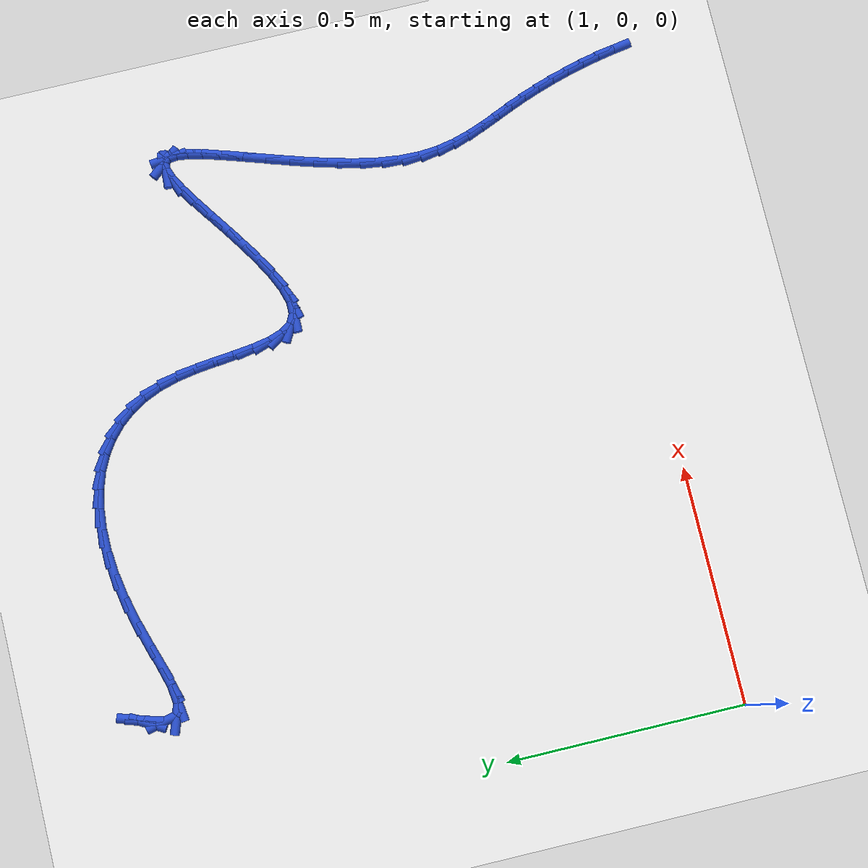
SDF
<sdf version="1.6">
 <world name="default">
  <model name="ground_plane">
   <static>1</static>
   <link name="link">
    <collision name="collision">
     <geometry><plane><normal>0 0 1</normal><size>100 100</size></plane></geometry>
     <surface><friction><ode><mu>100</mu><mu2>50</mu2></ode></friction></surface>
    </collision>
    <visual name="visual">
     <cast_shadows>0</cast_shadows>
     <geometry><plane><normal>0 0 1</normal><size>100 100</size></plane></geometry>
     <material>
      <script><uri>file://media/materials/scripts/gazebo.material</uri><name>Gazebo/WhiteGlow</name></script>
     </material>
    </visual>
   </link>
  </model>
  <model name="line">
   <link name="link_65">
    <pose>1.2470400216768356 1.1906525739523408 0.01 0 1.57 1.069491855337708</pose>
    <collision name="collision">
     <geometry><cylinder><radius>0.01</radius><length>0.08</length></cylinder></geometry>
    </collision>
    <visual name="visual">
     <material>
      <script><name>Gazebo/Blue</name><uri>file://media/materials/scripts/gazebo.material</uri></script>
     </material>
     <geometry><cylinder><radius>0.01</radius><length>0.08</length></cylinder></geometry>
    </visual>
   </link>
   <link name="link_66">
    <pose>1.2586101509191712 1.2117660453806218 0.01 0 1.57 1.2493437509703278</pose>
    <collision name="collision">
     <geometry><cylinder><radius>0.01</radius><length>0.08</length></cylinder></geometry>
    </collision>
    <visual name="visual">
     <material>
      <script><name>Gazebo/Blue</name><uri>file://media/materials/scripts/gazebo.material</uri></script>
     </material>
     <geometry><cylinder><radius>0.01</radius><length>0.08</length></cylinder></geometry>
    </visual>
   </link>
   <link name="link_67">
    <pose>1.2532583155586323 1.195694577707309 0.01 0 1.57 1.300045318937268</pose>
    <collision name="collision">
     <geometry><cylinder><radius>0.01</radius><length>0.08</length></cylinder></geometry>
    </collision>
    <visual name="visual">
     <material>
      <script><name>Gazebo/Blue</name><uri>file://media/materials/scripts/gazebo.material</uri></script>
     </material>
     <geometry><cylinder><radius>0.01</radius><length>0.08</length></cylinder></geometry>
    </visual>
   </link>
   <link name="link_68">
    <pose>1.2423626196542008 1.1564402630263304 0.01 0 1.57 -1.3549386558875942</pose>
    <collision name="collision">
     <geometry><cylinder><radius>0.01</radius><length>0.08</length></cylinder></geometry>
    </collision>
    <visual name="visual">
     <material>
      <script><name>Gazebo/Blue</name><uri>file://media/materials/scripts/gazebo.material</uri></script>
     </material>
     <geometry><cylinder><radius>0.01</radius><length>0.08</length></cylinder></geometry>
    </visual>
   </link>
   <link name="link_69">
    <pose>1.2480989310480792 1.1302797851564288 0.01 0 1.57 -0.32456366873658393</pose>
    <collision name="collision">
     <geometry><cylinder><radius>0.01</radius><length>0.08</length></cylinder></geometry>
    </collision>
    <visual name="visual">
     <material>
      <script><name>Gazebo/Blue</name><uri>file://media/materials/scripts/gazebo.material</uri></script>
     </material>
     <geometry><cylinder><radius>0.01</radius><length>0.08</length></cylinder></geometry>
    </visual>
   </link>
   <link name="link_70">
    <pose>1.2722807053496137 1.1221435380291387 0.01 0 1.57 0.13242724114882728</pose>
    <collision name="collision">
     <geometry><cylinder><radius>0.01</radius><length>0.08</length></cylinder></geometry>
    </collision>
    <visual name="visual">
     <material>
      <script><name>Gazebo/Blue</name><uri>file://media/materials/scripts/gazebo.material</uri></script>
     </material>
     <geometry><cylinder><radius>0.01</radius><length>0.08</length></cylinder></geometry>
    </visual>
   </link>
   <link name="link_71">
    <pose>1.310442194326279 1.1272269091816627 0.01 0 1.57 0.2758807979107248</pose>
    <collision name="collision">
     <geometry><cylinder><radius>0.01</radius><length>0.08</length></cylinder></geometry>
    </collision>
    <visual name="visual">
     <material>
      <script><name>Gazebo/Blue</name><uri>file://media/materials/scripts/gazebo.material</uri></script>
     </material>
     <geometry><cylinder><radius>0.01</radius><length>0.08</length></cylinder></geometry>
    </visual>
   </link>
   <link name="link_72">
    <pose>1.3581164924560636 1.1407234919395746 0.01 0 1.57 0.31370550047748735</pose>
    <collision name="collision">
     <geometry><cylinder><radius>0.01</radius><length>0.08</length></cylinder></geometry>
    </collision>
    <visual name="visual">
     <material>
      <script><name>Gazebo/Blue</name><uri>file://media/materials/scripts/gazebo.material</uri></script>
     </material>
     <geometry><cylinder><radius>0.01</radius><length>0.08</length></cylinder></geometry>
    </visual>
   </link>
   <link name="link_73">
    <pose>1.4108366942169583 1.15782687962845 0.01 0 1.57 0.2906744832335251</pose>
    <collision name="collision">
     <geometry><cylinder><radius>0.01</radius><length>0.08</length></cylinder></geometry>
    </collision>
    <visual name="visual">
     <material>
      <script><name>Gazebo/Blue</name><uri>file://media/materials/scripts/gazebo.material</uri></script>
     </material>
     <geometry><cylinder><radius>0.01</radius><length>0.08</length></cylinder></geometry>
    </visual>
   </link>
   <link name="link_74">
    <pose>1.4641856941664952 1.173786098558572 0.01 0 1.57 0.2311575018289077</pose>
    <collision name="collision">
     <geometry><cylinder><radius>0.01</radius><length>0.08</length></cylinder></geometry>
    </collision>
    <visual name="visual">
     <material>
      <script><name>Gazebo/Blue</name><uri>file://media/materials/scripts/gazebo.material</uri></script>
     </material>
     <geometry><cylinder><radius>0.01</radius><length>0.08</length></cylinder></geometry>
    </visual>
   </link>
   <link name="link_75">
    <pose>1.515570102734869 1.185880172080511 0.01 0 1.57 0.1628930323573283</pose>
    <collision name="collision">
     <geometry><cylinder><radius>0.01</radius><length>0.08</length></cylinder></geometry>
    </collision>
    <visual name="visual">
     <material>
      <script><name>Gazebo/Blue</name><uri>file://media/materials/scripts/gazebo.material</uri></script>
     </material>
     <geometry><cylinder><radius>0.01</radius><length>0.08</length></cylinder></geometry>
    </visual>
   </link>
   <link name="link_76">
    <pose>1.5647026281473009 1.1939550649026969 0.01 0 1.57 0.08677859015937482</pose>
    <collision name="collision">
     <geometry><cylinder><radius>0.01</radius><length>0.08</length></cylinder></geometry>
    </collision>
    <visual name="visual">
     <material>
      <script><name>Gazebo/Blue</name><uri>file://media/materials/scripts/gazebo.material</uri></script>
     </material>
     <geometry><cylinder><radius>0.01</radius><length>0.08</length></cylinder></geometry>
    </visual>
   </link>
   <link name="link_77">
    <pose>1.6114439237967702 1.1980214210332125 0.01 0 1.57 0.0015485699694068537</pose>
    <collision name="collision">
     <geometry><cylinder><radius>0.01</radius><length>0.08</length></cylinder></geometry>
    </collision>
    <visual name="visual">
     <material>
      <script><name>Gazebo/Blue</name><uri>file://media/materials/scripts/gazebo.material</uri></script>
     </material>
     <geometry><cylinder><radius>0.01</radius><length>0.08</length></cylinder></geometry>
    </visual>
   </link>
   <link name="link_78">
    <pose>1.6556546430762589 1.1980898844801413 0.01 0 1.57 -0.09405746901182352</pose>
    <collision name="collision">
     <geometry><cylinder><radius>0.01</radius><length>0.08</length></cylinder></geometry>
    </collision>
    <visual name="visual">
     <material>
      <script><name>Gazebo/Blue</name><uri>file://media/materials/scripts/gazebo.material</uri></script>
     </material>
     <geometry><cylinder><radius>0.01</radius><length>0.08</length></cylinder></geometry>
    </visual>
   </link>
   <link name="link_79">
    <pose>1.6971954393787454 1.1941710992515668 0.01 0 1.57 -0.20109393832108238</pose>
    <collision name="collision">
     <geometry><cylinder><radius>0.01</radius><length>0.08</length></cylinder></geometry>
    </collision>
    <visual name="visual">
     <material>
      <script><name>Gazebo/Blue</name><uri>file://media/materials/scripts/gazebo.material</uri></script>
     </material>
     <geometry><cylinder><radius>0.01</radius><length>0.08</length></cylinder></geometry>
    </visual>
   </link>
   <link name="link_80">
    <pose>1.735926966097211 1.1862757093555718 0.01 0 1.57 -0.3200824179990273</pose>
    <collision name="collision">
     <geometry><cylinder><radius>0.01</radius><length>0.08</length></cylinder></geometry>
    </collision>
    <visual name="visual">
     <material>
      <script><name>Gazebo/Blue</name><uri>file://media/materials/scripts/gazebo.material</uri></script>
     </material>
     <geometry><cylinder><radius>0.01</radius><length>0.08</length></cylinder></geometry>
    </visual>
   </link>
   <link name="link_81">
    <pose>1.7717098766246362 1.17441435880024 0.01 0 1.57 -0.45057535461873316</pose>
    <collision name="collision">
     <geometry><cylinder><radius>0.01</radius><length>0.08</length></cylinder></geometry>
    </collision>
    <visual name="visual">
     <material>
      <script><name>Gazebo/Blue</name><uri>file://media/materials/scripts/gazebo.material</uri></script>
     </material>
     <geometry><cylinder><radius>0.01</radius><length>0.08</length></cylinder></geometry>
    </visual>
   </link>
   <link name="link_82">
    <pose>1.804404824354002 1.1585976915936547 0.01 0 1.57 -0.5907287353874272</pose>
    <collision name="collision">
     <geometry><cylinder><radius>0.01</radius><length>0.08</length></cylinder></geometry>
    </collision>
    <visual name="visual">
     <material>
      <script><name>Gazebo/Blue</name><uri>file://media/materials/scripts/gazebo.material</uri></script>
     </material>
     <geometry><cylinder><radius>0.01</radius><length>0.08</length></cylinder></geometry>
    </visual>
   </link>
   <link name="link_83">
    <pose>1.833872462678287 1.1388363517438986 0.01 0 1.57 -0.7371266529906567</pose>
    <collision name="collision">
     <geometry><cylinder><radius>0.01</radius><length>0.08</length></cylinder></geometry>
    </collision>
    <visual name="visual">
     <material>
      <script><name>Gazebo/Blue</name><uri>file://media/materials/scripts/gazebo.material</uri></script>
     </material>
     <geometry><cylinder><radius>0.01</radius><length>0.08</length></cylinder></geometry>
    </visual>
   </link>
   <link name="link_84">
    <pose>1.8599734449904721 1.1151409832590558 0.01 0 1.57 -0.8851141408565554</pose>
    <collision name="collision">
     <geometry><cylinder><radius>0.01</radius><length>0.08</length></cylinder></geometry>
    </collision>
    <visual name="visual">
     <material>
      <script><name>Gazebo/Blue</name><uri>file://media/materials/scripts/gazebo.material</uri></script>
     </material>
     <geometry><cylinder><radius>0.01</radius><length>0.08</length></cylinder></geometry>
    </visual>
   </link>
   <link name="link_85">
    <pose>1.8825684246835388 1.087522230147209 0.01 0 1.57 -1.0296604323064285</pose>
    <collision name="collision">
     <geometry><cylinder><radius>0.01</radius><length>0.08</length></cylinder></geometry>
    </collision>
    <visual name="visual">
     <material>
      <script><name>Gazebo/Blue</name><uri>file://media/materials/scripts/gazebo.material</uri></script>
     </material>
     <geometry><cylinder><radius>0.01</radius><length>0.08</length></cylinder></geometry>
    </visual>
   </link>
   <link name="link_86">
    <pose>1.9015180551504658 1.0559907364164411 0.01 0 1.57 -1.1664027131261407</pose>
    <collision name="collision">
     <geometry><cylinder><radius>0.01</radius><length>0.08</length></cylinder></geometry>
    </collision>
    <visual name="visual">
     <material>
      <script><name>Gazebo/Blue</name><uri>file://media/materials/scripts/gazebo.material</uri></script>
     </material>
     <geometry><cylinder><radius>0.01</radius><length>0.08</length></cylinder></geometry>
    </visual>
   </link>
   <link name="link_87">
    <pose>1.9166829897842352 1.0205571460748357 0.01 0 1.57 -1.2922292219698175</pose>
    <collision name="collision">
     <geometry><cylinder><radius>0.01</radius><length>0.08</length></cylinder></geometry>
    </collision>
    <visual name="visual">
     <material>
      <script><name>Gazebo/Blue</name><uri>file://media/materials/scripts/gazebo.material</uri></script>
     </material>
     <geometry><cylinder><radius>0.01</radius><length>0.08</length></cylinder></geometry>
    </visual>
   </link>
   <link name="link_88">
    <pose>1.9279284091733329 0.9812379908573292 0.01 0 1.57 -1.392222722828529</pose>
    <collision name="collision">
     <geometry><cylinder><radius>0.01</radius><length>0.08</length></cylinder></geometry>
    </collision>
    <visual name="visual">
     <material>
      <script><name>Gazebo/Blue</name><uri>file://media/materials/scripts/gazebo.material</uri></script>
     </material>
     <geometry><cylinder><radius>0.01</radius><length>0.08</length></cylinder></geometry>
    </visual>
   </link>
   <link name="link_89">
    <pose>1.9356088461742684 0.9386862169157555 0.01 0 1.57 -1.4487127546593868</pose>
    <collision name="collision">
     <geometry><cylinder><radius>0.01</radius><length>0.08</length></cylinder></geometry>
    </collision>
    <visual name="visual">
     <material>
      <script><name>Gazebo/Blue</name><uri>file://media/materials/scripts/gazebo.material</uri></script>
     </material>
     <geometry><cylinder><radius>0.01</radius><length>0.08</length></cylinder></geometry>
    </visual>
   </link>
   <link name="link_90">
    <pose>1.94099931443647 0.8947518778547449 0.01 0 1.57 -1.4678443282025755</pose>
    <collision name="collision">
     <geometry><cylinder><radius>0.01</radius><length>0.08</length></cylinder></geometry>
    </collision>
    <visual name="visual">
     <material>
      <script><name>Gazebo/Blue</name><uri>file://media/materials/scripts/gazebo.material</uri></script>
     </material>
     <geometry><cylinder><radius>0.01</radius><length>0.08</length></cylinder></geometry>
    </visual>
   </link>
   <link name="link_91">
    <pose>1.9454765263248768 0.8514172889091729 0.01 0 1.57 -1.4501492478827247</pose>
    <collision name="collision">
     <geometry><cylinder><radius>0.01</radius><length>0.08</length></cylinder></geometry>
    </collision>
    <visual name="visual">
     <material>
      <script><name>Gazebo/Blue</name><uri>file://media/materials/scripts/gazebo.material</uri></script>
     </material>
     <geometry><cylinder><radius>0.01</radius><length>0.08</length></cylinder></geometry>
    </visual>
   </link>
   <link name="link_92">
    <pose>1.950417194204433 0.8106647653139185 0.01 0 1.57 -1.385566920101059</pose>
    <collision name="collision">
     <geometry><cylinder><radius>0.01</radius><length>0.08</length></cylinder></geometry>
    </collision>
    <visual name="visual">
     <material>
      <script><name>Gazebo/Blue</name><uri>file://media/materials/scripts/gazebo.material</uri></script>
     </material>
     <geometry><cylinder><radius>0.01</radius><length>0.08</length></cylinder></geometry>
    </visual>
   </link>
   <link name="link_93">
    <pose>1.957198030440079 0.774476622303857 0.01 0 1.57 -1.2454904258620312</pose>
    <collision name="collision">
     <geometry><cylinder><radius>0.01</radius><length>0.08</length></cylinder></geometry>
    </collision>
    <visual name="visual">
     <material>
      <script><name>Gazebo/Blue</name><uri>file://media/materials/scripts/gazebo.material</uri></script>
     </material>
     <geometry><cylinder><radius>0.01</radius><length>0.08</length></cylinder></geometry>
    </visual>
   </link>
   <link name="link_94">
    <pose>1.9671957473967567 0.7448351751138658 0.01 0 1.57 -0.9660523232054864</pose>
    <collision name="collision">
     <geometry><cylinder><radius>0.01</radius><length>0.08</length></cylinder></geometry>
    </collision>
    <visual name="visual">
     <material>
      <script><name>Gazebo/Blue</name><uri>file://media/materials/scripts/gazebo.material</uri></script>
     </material>
     <geometry><cylinder><radius>0.01</radius><length>0.08</length></cylinder></geometry>
    </visual>
   </link>
   <link name="link_95">
    <pose>1.9817870574394083 0.7237227389788208 0.01 0 1.57 -0.47928741672964353</pose>
    <collision name="collision">
     <geometry><cylinder><radius>0.01</radius><length>0.08</length></cylinder></geometry>
    </collision>
    <visual name="visual">
     <material>
      <script><name>Gazebo/Blue</name><uri>file://media/materials/scripts/gazebo.material</uri></script>
     </material>
     <geometry><cylinder><radius>0.01</radius><length>0.08</length></cylinder></geometry>
    </visual>
   </link>
   <link name="link_96">
    <pose>2.002305914388506 0.7130589769653117 0.01 0 1.57 -0.0008298892421840993</pose>
    <collision name="collision">
     <geometry><cylinder><radius>0.01</radius><length>0.08</length></cylinder></geometry>
    </collision>
    <visual name="visual">
     <material>
      <script><name>Gazebo/Blue</name><uri>file://media/materials/scripts/gazebo.material</uri></script>
     </material>
     <geometry><cylinder><radius>0.01</radius><length>0.08</length></cylinder></geometry>
    </visual>
   </link>
   <link name="link_97">
    <pose>2.0289078751727865 0.7130369002791677 0.01 0 1.57 0.27531985613689647</pose>
    <collision name="collision">
     <geometry><cylinder><radius>0.01</radius><length>0.08</length></cylinder></geometry>
    </collision>
    <visual name="visual">
     <material>
      <script><name>Gazebo/Blue</name><uri>file://media/materials/scripts/gazebo.material</uri></script>
     </material>
     <geometry><cylinder><radius>0.01</radius><length>0.08</length></cylinder></geometry>
    </visual>
   </link>
   <link name="link_98">
    <pose>2.0604503963718344 0.7219474721837659 0.01 0 1.57 0.4266937053308815</pose>
    <collision name="collision">
     <geometry><cylinder><radius>0.01</radius><length>0.08</length></cylinder></geometry>
    </collision>
    <visual name="visual">
     <material>
      <script><name>Gazebo/Blue</name><uri>file://media/materials/scripts/gazebo.material</uri></script>
     </material>
     <geometry><cylinder><radius>0.01</radius><length>0.08</length></cylinder></geometry>
    </visual>
   </link>
   <link name="link_99">
    <pose>2.0957241650614646 0.7379838215975881 0.01 0 1.57 0.5143002492993605</pose>
    <collision name="collision">
     <geometry><cylinder><radius>0.01</radius><length>0.08</length></cylinder></geometry>
    </collision>
    <visual name="visual">
     <material>
      <script><name>Gazebo/Blue</name><uri>file://media/materials/scripts/gazebo.material</uri></script>
     </material>
     <geometry><cylinder><radius>0.01</radius><length>0.08</length></cylinder></geometry>
    </visual>
   </link>
   <link name="link_100">
    <pose>2.1335198683174883 0.7593390774391168 0.01 0 1.57 0.5663683293784063</pose>
    <collision name="collision">
     <geometry><cylinder><radius>0.01</radius><length>0.08</length></cylinder></geometry>
    </collision>
    <visual name="visual">
     <material>
      <script><name>Gazebo/Blue</name><uri>file://media/materials/scripts/gazebo.material</uri></script>
     </material>
     <geometry><cylinder><radius>0.01</radius><length>0.08</length></cylinder></geometry>
    </visual>
   </link>
   <link name="link_101">
    <pose>2.1726281932157185 0.7842063686268328 0.01 0 1.57 0.5955800469422676</pose>
    <collision name="collision">
     <geometry><cylinder><radius>0.01</radius><length>0.08</length></cylinder></geometry>
    </collision>
    <visual name="visual">
     <material>
      <script><name>Gazebo/Blue</name><uri>file://media/materials/scripts/gazebo.material</uri></script>
     </material>
     <geometry><cylinder><radius>0.01</radius><length>0.08</length></cylinder></geometry>
    </visual>
   </link>
   <link name="link_102">
    <pose>2.2118398268319686 0.8107788240792186 0.01 0 1.57 0.6071382442664031</pose>
    <collision name="collision">
     <geometry><cylinder><radius>0.01</radius><length>0.08</length></cylinder></geometry>
    </collision>
    <visual name="visual">
     <material>
      <script><name>Gazebo/Blue</name><uri>file://media/materials/scripts/gazebo.material</uri></script>
     </material>
     <geometry><cylinder><radius>0.01</radius><length>0.08</length></cylinder></geometry>
    </visual>
   </link>
   <link name="link_103">
    <pose>2.2499454562420516 0.8372495727147564 0.01 0 1.57 0.601458348525509</pose>
    <collision name="collision">
     <geometry><cylinder><radius>0.01</radius><length>0.08</length></cylinder></geometry>
    </collision>
    <visual name="visual">
     <material>
      <script><name>Gazebo/Blue</name><uri>file://media/materials/scripts/gazebo.material</uri></script>
     </material>
     <geometry><cylinder><radius>0.01</radius><length>0.08</length></cylinder></geometry>
    </visual>
   </link>
   <link name="link_104">
    <pose>2.2857357685217803 0.8618117434519281 0.01 0 1.57 0.5736257175701676</pose>
    <collision name="collision">
     <geometry><cylinder><radius>0.01</radius><length>0.08</length></cylinder></geometry>
    </collision>
    <visual name="visual">
     <material>
      <script><name>Gazebo/Blue</name><uri>file://media/materials/scripts/gazebo.material</uri></script>
     </material>
     <geometry><cylinder><radius>0.01</radius><length>0.08</length></cylinder></geometry>
    </visual>
   </link>
   <link name="link_105">
    <pose>2.318001450746968 0.8826584652092153 0.01 0 1.57 0.5079027978946425</pose>
    <collision name="collision">
     <geometry><cylinder><radius>0.01</radius><length>0.08</length></cylinder></geometry>
    </collision>
    <visual name="visual">
     <material>
      <script><name>Gazebo/Blue</name><uri>file://media/materials/scripts/gazebo.material</uri></script>
     </material>
     <geometry><cylinder><radius>0.01</radius><length>0.08</length></cylinder></geometry>
    </visual>
   </link>
   <link name="link_106">
    <pose>2.3455331899934273 0.8979828669050998 0.01 0 1.57 0.35468430676815416</pose>
    <collision name="collision">
     <geometry><cylinder><radius>0.01</radius><length>0.08</length></cylinder></geometry>
    </collision>
    <visual name="visual">
     <material>
      <script><name>Gazebo/Blue</name><uri>file://media/materials/scripts/gazebo.material</uri></script>
     </material>
     <geometry><cylinder><radius>0.01</radius><length>0.08</length></cylinder></geometry>
    </visual>
   </link>
   <link name="link_107">
    <pose>2.3671216733369707 0.9059780774580639 0.01 0 1.57 -0.062211079822125516</pose>
    <collision name="collision">
     <geometry><cylinder><radius>0.01</radius><length>0.08</length></cylinder></geometry>
    </collision>
    <visual name="visual">
     <material>
      <script><name>Gazebo/Blue</name><uri>file://media/materials/scripts/gazebo.material</uri></script>
     </material>
     <geometry><cylinder><radius>0.01</radius><length>0.08</length></cylinder></geometry>
    </visual>
   </link>
   <link name="link_108">
    <pose>2.3817339176198655 0.9050678594119563 0.01 0 1.57 -0.8864036699264787</pose>
    <collision name="collision">
     <geometry><cylinder><radius>0.01</radius><length>0.08</length></cylinder></geometry>
    </collision>
    <visual name="visual">
     <material>
      <script><name>Gazebo/Blue</name><uri>file://media/materials/scripts/gazebo.material</uri></script>
     </material>
     <geometry><cylinder><radius>0.01</radius><length>0.08</length></cylinder></geometry>
    </visual>
   </link>
   <link name="link_109">
    <pose>2.389639262971427 0.8953793720038411 0.01 0 1.57 -1.454623617544779</pose>
    <collision name="collision">
     <geometry><cylinder><radius>0.01</radius><length>0.08</length></cylinder></geometry>
    </collision>
    <visual name="visual">
     <material>
      <script><name>Gazebo/Blue</name><uri>file://media/materials/scripts/gazebo.material</uri></script>
     </material>
     <geometry><cylinder><radius>0.01</radius><length>0.08</length></cylinder></geometry>
    </visual>
   </link>
   <link name="link_110">
    <pose>2.391690416800015 0.8778027999836726 0.01 0 1.57 1.4514043150551825</pose>
    <collision name="collision">
     <geometry><cylinder><radius>0.01</radius><length>0.08</length></cylinder></geometry>
    </collision>
    <visual name="visual">
     <material>
      <script><name>Gazebo/Blue</name><uri>file://media/materials/scripts/gazebo.material</uri></script>
     </material>
     <geometry><cylinder><radius>0.01</radius><length>0.08</length></cylinder></geometry>
    </visual>
   </link>
   <link name="link_111">
    <pose>2.3887428310134697 0.8532319178178693 0.01 0 1.57 1.3435996181285146</pose>
    <collision name="collision">
     <geometry><cylinder><radius>0.01</radius><length>0.08</length></cylinder></geometry>
    </collision>
    <visual name="visual">
     <material>
      <script><name>Gazebo/Blue</name><uri>file://media/materials/scripts/gazebo.material</uri></script>
     </material>
     <geometry><cylinder><radius>0.01</radius><length>0.08</length></cylinder></geometry>
    </visual>
   </link>
   <link name="link_112">
    <pose>2.3816519575196344 0.8225604999728499 0.01 0 1.57 1.2892065304679212</pose>
    <collision name="collision">
     <geometry><cylinder><radius>0.01</radius><length>0.08</length></cylinder></geometry>
    </collision>
    <visual name="visual">
     <material>
      <script><name>Gazebo/Blue</name><uri>file://media/materials/scripts/gazebo.material</uri></script>
     </material>
     <geometry><cylinder><radius>0.01</radius><length>0.08</length></cylinder></geometry>
    </visual>
   </link>
   <link name="link_113">
    <pose>2.3712732482263505 0.7866823209150319 0.01 0 1.57 1.262224089905413</pose>
    <collision name="collision">
     <geometry><cylinder><radius>0.01</radius><length>0.08</length></cylinder></geometry>
    </collision>
    <visual name="visual">
     <material>
      <script><name>Gazebo/Blue</name><uri>file://media/materials/scripts/gazebo.material</uri></script>
     </material>
     <geometry><cylinder><radius>0.01</radius><length>0.08</length></cylinder></geometry>
    </visual>
   </link>
   <link name="link_114">
    <pose>2.358462155041461 0.7464911551108349 0.01 0 1.57 1.2521190664101822</pose>
    <collision name="collision">
     <geometry><cylinder><radius>0.01</radius><length>0.08</length></cylinder></geometry>
    </collision>
    <visual name="visual">
     <material>
      <script><name>Gazebo/Blue</name><uri>file://media/materials/scripts/gazebo.material</uri></script>
     </material>
     <geometry><cylinder><radius>0.01</radius><length>0.08</length></cylinder></geometry>
    </visual>
   </link>
   <link name="link_115">
    <pose>2.344074129872807 0.7028807770266773 0.01 0 1.57 1.254304427595381</pose>
    <collision name="collision">
     <geometry><cylinder><radius>0.01</radius><length>0.08</length></cylinder></geometry>
    </collision>
    <visual name="visual">
     <material>
      <script><name>Gazebo/Blue</name><uri>file://media/materials/scripts/gazebo.material</uri></script>
     </material>
     <geometry><cylinder><radius>0.01</radius><length>0.08</length></cylinder></geometry>
    </visual>
   </link>
   <link name="link_116">
    <pose>2.3289646246282314 0.6567449611289774 0.01 0 1.57 1.2669925149403456</pose>
    <collision name="collision">
     <geometry><cylinder><radius>0.01</radius><length>0.08</length></cylinder></geometry>
    </collision>
    <visual name="visual">
     <material>
      <script><name>Gazebo/Blue</name><uri>file://media/materials/scripts/gazebo.material</uri></script>
     </material>
     <geometry><cylinder><radius>0.01</radius><length>0.08</length></cylinder></geometry>
    </visual>
   </link>
   <link name="link_117">
    <pose>2.3139890912155745 0.6089774818841526 0.01 0 1.57 1.2900694407700375</pose>
    <collision name="collision">
     <geometry><cylinder><radius>0.01</radius><length>0.08</length></cylinder></geometry>
    </collision>
    <visual name="visual">
     <material>
      <script><name>Gazebo/Blue</name><uri>file://media/materials/scripts/gazebo.material</uri></script>
     </material>
     <geometry><cylinder><radius>0.01</radius><length>0.08</length></cylinder></geometry>
    </visual>
   </link>
   <link name="link_118">
    <pose>2.3000029815426806 0.5604721137586235 0.01 0 1.57 1.3247694280031486</pose>
    <collision name="collision">
     <geometry><cylinder><radius>0.01</radius><length>0.08</length></cylinder></geometry>
    </collision>
    <visual name="visual">
     <material>
      <script><name>Gazebo/Blue</name><uri>file://media/materials/scripts/gazebo.material</uri></script>
     </material>
     <geometry><cylinder><radius>0.01</radius><length>0.08</length></cylinder></geometry>
    </visual>
   </link>
   <link name="link_119">
    <pose>2.287861747517391 0.5121226312188073 0.01 0 1.57 1.3737882196829743</pose>
    <collision name="collision">
     <geometry><cylinder><radius>0.01</radius><length>0.08</length></cylinder></geometry>
    </collision>
    <visual name="visual">
     <material>
      <script><name>Gazebo/Blue</name><uri>file://media/materials/scripts/gazebo.material</uri></script>
     </material>
     <geometry><cylinder><radius>0.01</radius><length>0.08</length></cylinder></geometry>
    </visual>
   </link>
   <link name="link_120">
    <pose>2.2784208410475477 0.4648228087311229 0.01 0 1.57 1.441764234193045</pose>
    <collision name="collision">
     <geometry><cylinder><radius>0.01</radius><length>0.08</length></cylinder></geometry>
    </collision>
    <visual name="visual">
     <material>
      <script><name>Gazebo/Blue</name><uri>file://media/materials/scripts/gazebo.material</uri></script>
     </material>
     <geometry><cylinder><radius>0.01</radius><length>0.08</length></cylinder></geometry>
    </visual>
   </link>
   <link name="link_121">
    <pose>2.2725357140409934 0.41946642076198865 0.01 0 1.57 1.5359515989732897</pose>
    <collision name="collision">
     <geometry><cylinder><radius>0.01</radius><length>0.08</length></cylinder></geometry>
    </collision>
    <visual name="visual">
     <material>
      <script><name>Gazebo/Blue</name><uri>file://media/materials/scripts/gazebo.material</uri></script>
     </material>
     <geometry><cylinder><radius>0.01</radius><length>0.08</length></cylinder></geometry>
    </visual>
   </link>
   <link name="link_122">
    <pose>2.2710532825834 0.376939716309201 0.01 0 1.57 -1.4907724700347256</pose>
    <collision name="collision">
     <geometry><cylinder><radius>0.01</radius><length>0.08</length></cylinder></geometry>
    </collision>
    <visual name="visual">
     <material>
      <script><name>Gazebo/Blue</name><uri>file://media/materials/scripts/gazebo.material</uri></script>
     </material>
     <geometry><cylinder><radius>0.01</radius><length>0.08</length></cylinder></geometry>
    </visual>
   </link>
   <link name="link_123">
    <pose>2.2742089523444573 0.3375898161698918 0.01 0 1.57 -1.3818988884936687</pose>
    <collision name="collision">
     <geometry><cylinder><radius>0.01</radius><length>0.08</length></cylinder></geometry>
    </collision>
    <visual name="visual">
     <material>
      <script><name>Gazebo/Blue</name><uri>file://media/materials/scripts/gazebo.material</uri></script>
     </material>
     <geometry><cylinder><radius>0.01</radius><length>0.08</length></cylinder></geometry>
    </visual>
   </link>
   <link name="link_124">
    <pose>2.281228257108049 0.3008735040374148 0.01 0 1.57 -1.2899153044724145</pose>
    <collision name="collision">
     <geometry><cylinder><radius>0.01</radius><length>0.08</length></cylinder></geometry>
    </collision>
    <visual name="visual">
     <material>
      <script><name>Gazebo/Blue</name><uri>file://media/materials/scripts/gazebo.material</uri></script>
     </material>
     <geometry><cylinder><radius>0.01</radius><length>0.08</length></cylinder></geometry>
    </visual>
   </link>
   <link name="link_125">
    <pose>2.291242182343108 0.26616420662283274 0.01 0 1.57 -1.221496826356744</pose>
    <collision name="collision">
     <geometry><cylinder><radius>0.01</radius><length>0.08</length></cylinder></geometry>
    </collision>
    <visual name="visual">
     <material>
      <script><name>Gazebo/Blue</name><uri>file://media/materials/scripts/gazebo.material</uri></script>
     </material>
     <geometry><cylinder><radius>0.01</radius><length>0.08</length></cylinder></geometry>
    </visual>
   </link>
   <link name="link_126">
    <pose>2.3033817135185686 0.23283535063720803 0.01 0 1.57 -1.1806384098256322</pose>
    <collision name="collision">
     <geometry><cylinder><radius>0.01</radius><length>0.08</length></cylinder></geometry>
    </collision>
    <visual name="visual">
     <material>
      <script><name>Gazebo/Blue</name><uri>file://media/materials/scripts/gazebo.material</uri></script>
     </material>
     <geometry><cylinder><radius>0.01</radius><length>0.08</length></cylinder></geometry>
    </visual>
   </link>
   <link name="link_127">
    <pose>2.316777836103361 0.2002603627916044 0.01 0 1.57 -1.1690971955609915</pose>
    <collision name="collision">
     <geometry><cylinder><radius>0.01</radius><length>0.08</length></cylinder></geometry>
    </collision>
    <visual name="visual">
     <material>
      <script><name>Gazebo/Blue</name><uri>file://media/materials/scripts/gazebo.material</uri></script>
     </material>
     <geometry><cylinder><radius>0.01</radius><length>0.08</length></cylinder></geometry>
    </visual>
   </link>
   <link name="link_128">
    <pose>2.33056153556642 0.1678126697970842 0.01 0 1.57 -1.1866094397982287</pose>
    <collision name="collision">
     <geometry><cylinder><radius>0.01</radius><length>0.08</length></cylinder></geometry>
    </collision>
    <visual name="visual">
     <material>
      <script><name>Gazebo/Blue</name><uri>file://media/materials/scripts/gazebo.material</uri></script>
     </material>
     <geometry><cylinder><radius>0.01</radius><length>0.08</length></cylinder></geometry>
    </visual>
   </link>
   <link name="link_129">
    <pose>2.3438767463349834 0.13487670409847102 0.01 0 1.57 -1.219240728891635</pose>
    <collision name="collision">
     <geometry><cylinder><radius>0.01</radius><length>0.08</length></cylinder></geometry>
    </collision>
    <visual name="visual">
     <material>
      <script><name>Gazebo/Blue</name><uri>file://media/materials/scripts/gazebo.material</uri></script>
     </material>
     <geometry><cylinder><radius>0.01</radius><length>0.08</length></cylinder></geometry>
    </visual>
   </link>
   <link name="link_130">
    <pose>2.356244673833688 0.10115755282607419 0.01 0 1.57 -1.2518866372976243</pose>
    <collision name="collision">
     <geometry><cylinder><radius>0.01</radius><length>0.08</length></cylinder></geometry>
    </collision>
    <visual name="visual">
     <material>
      <script><name>Gazebo/Blue</name><uri>file://media/materials/scripts/gazebo.material</uri></script>
     </material>
     <geometry><cylinder><radius>0.01</radius><length>0.08</length></cylinder></geometry>
    </visual>
   </link>
   <link name="link_131">
    <pose>2.367614046622011 0.0667236686943214 0.01 0 1.57 -1.2839401707911042</pose>
    <collision name="collision">
     <geometry><cylinder><radius>0.01</radius><length>0.08</length></cylinder></geometry>
    </collision>
    <visual name="visual">
     <material>
      <script><name>Gazebo/Blue</name><uri>file://media/materials/scripts/gazebo.material</uri></script>
     </material>
     <geometry><cylinder><radius>0.01</radius><length>0.08</length></cylinder></geometry>
    </visual>
   </link>
   <link name="link_132">
    <pose>2.3779566419341425 0.03166309422335729 0.01 0 1.57 -1.3155918061537022</pose>
    <collision name="collision">
     <geometry><cylinder><radius>0.01</radius><length>0.08</length></cylinder></geometry>
    </collision>
    <visual name="visual">
     <material>
      <script><name>Gazebo/Blue</name><uri>file://media/materials/scripts/gazebo.material</uri></script>
     </material>
     <geometry><cylinder><radius>0.01</radius><length>0.08</length></cylinder></geometry>
    </visual>
   </link>
   <link name="link_133">
    <pose>2.387244237004275 -0.003936128066675139 0.01 0 1.57 -1.347023547656475</pose>
    <collision name="collision">
     <geometry><cylinder><radius>0.01</radius><length>0.08</length></cylinder></geometry>
    </collision>
    <visual name="visual">
     <material>
      <script><name>Gazebo/Blue</name><uri>file://media/materials/scripts/gazebo.material</uri></script>
     </material>
     <geometry><cylinder><radius>0.01</radius><length>0.08</length></cylinder></geometry>
    </visual>
   </link>
   <link name="link_134">
    <pose>2.395448609066597 -0.03998595565563227 0.01 0 1.57 -1.3784112165963327</pose>
    <collision name="collision">
     <geometry><cylinder><radius>0.01</radius><length>0.08</length></cylinder></geometry>
    </collision>
    <visual name="visual">
     <material>
      <script><name>Gazebo/Blue</name><uri>file://media/materials/scripts/gazebo.material</uri></script>
     </material>
     <geometry><cylinder><radius>0.01</radius><length>0.08</length></cylinder></geometry>
    </visual>
   </link>
   <link name="link_135">
    <pose>2.402541535355303 -0.07639834602337106 0.01 0 1.57 -1.4099265807899883</pose>
    <collision name="collision">
     <geometry><cylinder><radius>0.01</radius><length>0.08</length></cylinder></geometry>
    </collision>
    <visual name="visual">
     <material>
      <script><name>Gazebo/Blue</name><uri>file://media/materials/scripts/gazebo.material</uri></script>
     </material>
     <geometry><cylinder><radius>0.01</radius><length>0.08</length></cylinder></geometry>
    </visual>
   </link>
  </model>
 </world>
</sdf>
